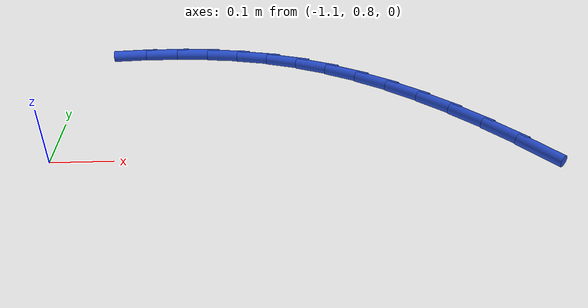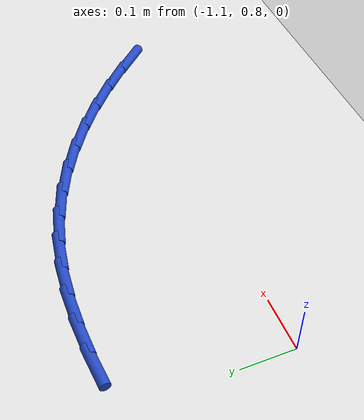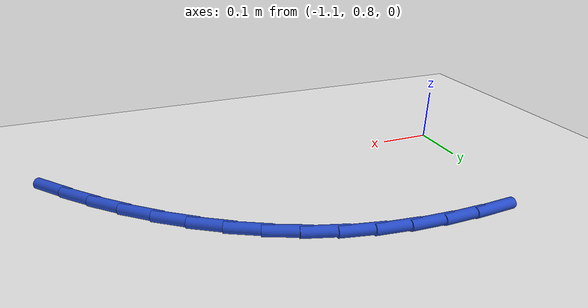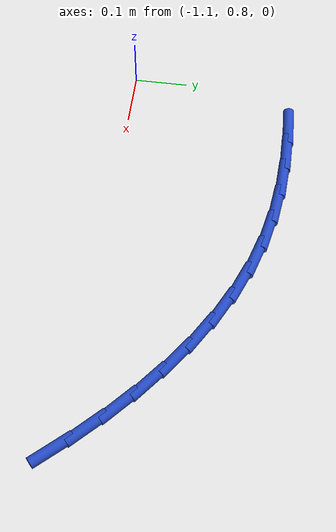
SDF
<sdf version="1.6">
 <world name="default">
  <model name="ground_plane">
   <static>1</static>
   <link name="link">
    <collision name="collision">
     <geometry><plane><normal>0 0 1</normal><size>100 100</size></plane></geometry>
     <surface><friction><ode><mu>100</mu><mu2>50</mu2></ode></friction></surface>
    </collision>
    <visual name="visual">
     <cast_shadows>0</cast_shadows>
     <geometry><plane><normal>0 0 1</normal><size>100 100</size></plane></geometry>
     <material>
      <script><uri>file://media/materials/scripts/gazebo.material</uri><name>Gazebo/WhiteGlow</name></script>
     </material>
    </visual>
   </link>
  </model>
  <model name="line">
   <link name="link_14">
    <pose>-0.33198852658399863 0.7894551409397106 0.01 0 1.57 -0.8350403326200817</pose>
    <collision name="collision">
     <geometry><cylinder><radius>0.01</radius><length>0.08</length></cylinder></geometry>
    </collision>
    <visual name="visual">
     <material>
      <script><name>Gazebo/Blue</name><uri>file://media/materials/scripts/gazebo.material</uri></script>
     </material>
     <geometry><cylinder><radius>0.01</radius><length>0.08</length></cylinder></geometry>
    </visual>
   </link>
   <link name="link_15">
    <pose>-0.3748540902704949 0.8368027653627438 0.01 0 1.57 -0.7837472701220961</pose>
    <collision name="collision">
     <geometry><cylinder><radius>0.01</radius><length>0.08</length></cylinder></geometry>
    </collision>
    <visual name="visual">
     <material>
      <script><name>Gazebo/Blue</name><uri>file://media/materials/scripts/gazebo.material</uri></script>
     </material>
     <geometry><cylinder><radius>0.01</radius><length>0.08</length></cylinder></geometry>
    </visual>
   </link>
   <link name="link_16">
    <pose>-0.4196737453277502 0.881474679256397 0.01 0 1.57 -0.7282953482409452</pose>
    <collision name="collision">
     <geometry><cylinder><radius>0.01</radius><length>0.08</length></cylinder></geometry>
    </collision>
    <visual name="visual">
     <material>
      <script><name>Gazebo/Blue</name><uri>file://media/materials/scripts/gazebo.material</uri></script>
     </material>
     <geometry><cylinder><radius>0.01</radius><length>0.08</length></cylinder></geometry>
    </visual>
   </link>
   <link name="link_17">
    <pose>-0.46635355183501837 0.9231061736173214 0.01 0 1.57 -0.668028807190083</pose>
    <collision name="collision">
     <geometry><cylinder><radius>0.01</radius><length>0.08</length></cylinder></geometry>
    </collision>
    <visual name="visual">
     <material>
      <script><name>Gazebo/Blue</name><uri>file://media/materials/scripts/gazebo.material</uri></script>
     </material>
     <geometry><cylinder><radius>0.01</radius><length>0.08</length></cylinder></geometry>
    </visual>
   </link>
   <link name="link_18">
    <pose>-0.5147995698715534 0.9613325394421689 0.01 0 1.57 -0.6022901121872718</pose>
    <collision name="collision">
     <geometry><cylinder><radius>0.01</radius><length>0.08</length></cylinder></geometry>
    </collision>
    <visual name="visual">
     <material>
      <script><name>Gazebo/Blue</name><uri>file://media/materials/scripts/gazebo.material</uri></script>
     </material>
     <geometry><cylinder><radius>0.01</radius><length>0.08</length></cylinder></geometry>
    </visual>
   </link>
   <link name="link_19">
    <pose>-0.5649178595166088 0.9957890677275899 0.01 0 1.57 -0.530461424156971</pose>
    <collision name="collision">
     <geometry><cylinder><radius>0.01</radius><length>0.08</length></cylinder></geometry>
    </collision>
    <visual name="visual">
     <material>
      <script><name>Gazebo/Blue</name><uri>file://media/materials/scripts/gazebo.material</uri></script>
     </material>
     <geometry><cylinder><radius>0.01</radius><length>0.08</length></cylinder></geometry>
    </visual>
   </link>
   <link name="link_20">
    <pose>-0.6166144808494383 1.026111049470236 0.01 0 1.57 -0.45203135515767817</pose>
    <collision name="collision">
     <geometry><cylinder><radius>0.01</radius><length>0.08</length></cylinder></geometry>
    </collision>
    <visual name="visual">
     <material>
      <script><name>Gazebo/Blue</name><uri>file://media/materials/scripts/gazebo.material</uri></script>
     </material>
     <geometry><cylinder><radius>0.01</radius><length>0.08</length></cylinder></geometry>
    </visual>
   </link>
   <link name="link_21">
    <pose>-0.6697954939492957 1.0519337756667582 0.01 0 1.57 -0.36669064510985727</pose>
    <collision name="collision">
     <geometry><cylinder><radius>0.01</radius><length>0.08</length></cylinder></geometry>
    </collision>
    <visual name="visual">
     <material>
      <script><name>Gazebo/Blue</name><uri>file://media/materials/scripts/gazebo.material</uri></script>
     </material>
     <geometry><cylinder><radius>0.01</radius><length>0.08</length></cylinder></geometry>
    </visual>
   </link>
   <link name="link_22">
    <pose>-0.7243669588954349 1.0728925373138076 0.01 0 1.57 -0.27489933132765665</pose>
    <collision name="collision">
     <geometry><cylinder><radius>0.01</radius><length>0.08</length></cylinder></geometry>
    </collision>
    <visual name="visual">
     <material>
      <script><name>Gazebo/Blue</name><uri>file://media/materials/scripts/gazebo.material</uri></script>
     </material>
     <geometry><cylinder><radius>0.01</radius><length>0.08</length></cylinder></geometry>
    </visual>
   </link>
   <link name="link_23">
    <pose>-0.7802354210148772 1.0886496747842522 0.01 0 1.57 -0.18539231273912504</pose>
    <collision name="collision">
     <geometry><cylinder><radius>0.01</radius><length>0.08</length></cylinder></geometry>
    </collision>
    <visual name="visual">
     <material>
      <script><name>Gazebo/Blue</name><uri>file://media/materials/scripts/gazebo.material</uri></script>
     </material>
     <geometry><cylinder><radius>0.01</radius><length>0.08</length></cylinder></geometry>
    </visual>
   </link>
   <link name="link_24">
    <pose>-0.837316169408386 1.099354936413153 0.01 0 1.57 -0.10653666027243767</pose>
    <collision name="collision">
     <geometry><cylinder><radius>0.01</radius><length>0.08</length></cylinder></geometry>
    </collision>
    <visual name="visual">
     <material>
      <script><name>Gazebo/Blue</name><uri>file://media/materials/scripts/gazebo.material</uri></script>
     </material>
     <geometry><cylinder><radius>0.01</radius><length>0.08</length></cylinder></geometry>
    </visual>
   </link>
   <link name="link_25">
    <pose>-0.8955320737246556 1.1055806362980478 0.01 0 1.57 -0.03932989816066343</pose>
    <collision name="collision">
     <geometry><cylinder><radius>0.01</radius><length>0.08</length></cylinder></geometry>
    </collision>
    <visual name="visual">
     <material>
      <script><name>Gazebo/Blue</name><uri>file://media/materials/scripts/gazebo.material</uri></script>
     </material>
     <geometry><cylinder><radius>0.01</radius><length>0.08</length></cylinder></geometry>
    </visual>
   </link>
   <link name="link_26">
    <pose>-0.9548062547277205 1.107913086567643 0.01 0 1.57 0.016171154533534945</pose>
    <collision name="collision">
     <geometry><cylinder><radius>0.01</radius><length>0.08</length></cylinder></geometry>
    </collision>
    <visual name="visual">
     <material>
      <script><name>Gazebo/Blue</name><uri>file://media/materials/scripts/gazebo.material</uri></script>
     </material>
     <geometry><cylinder><radius>0.01</radius><length>0.08</length></cylinder></geometry>
    </visual>
   </link>
   <link name="link_27">
    <pose>-1.0150618331816168 1.1069385993506475 0.01 0 1.57 0.060343698032325824</pose>
    <collision name="collision">
     <geometry><cylinder><radius>0.01</radius><length>0.08</length></cylinder></geometry>
    </collision>
    <visual name="visual">
     <material>
      <script><name>Gazebo/Blue</name><uri>file://media/materials/scripts/gazebo.material</uri></script>
     </material>
     <geometry><cylinder><radius>0.01</radius><length>0.08</length></cylinder></geometry>
    </visual>
   </link>
  </model>
 </world>
</sdf>
